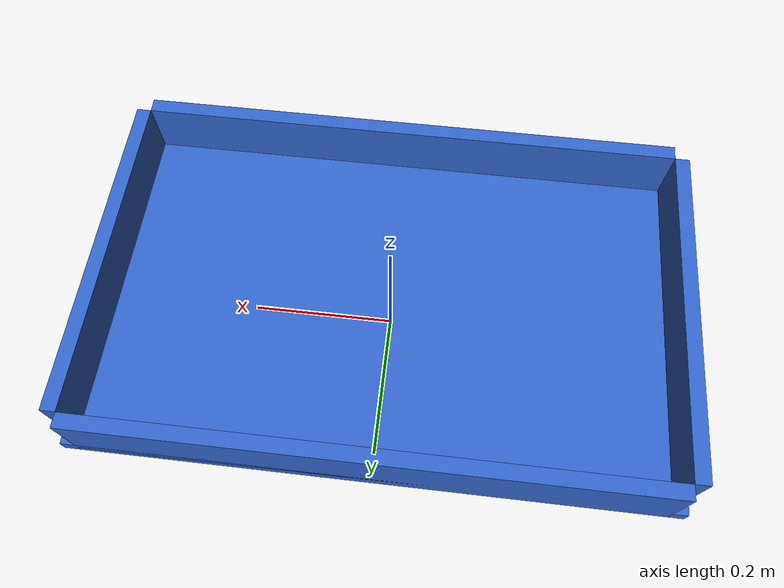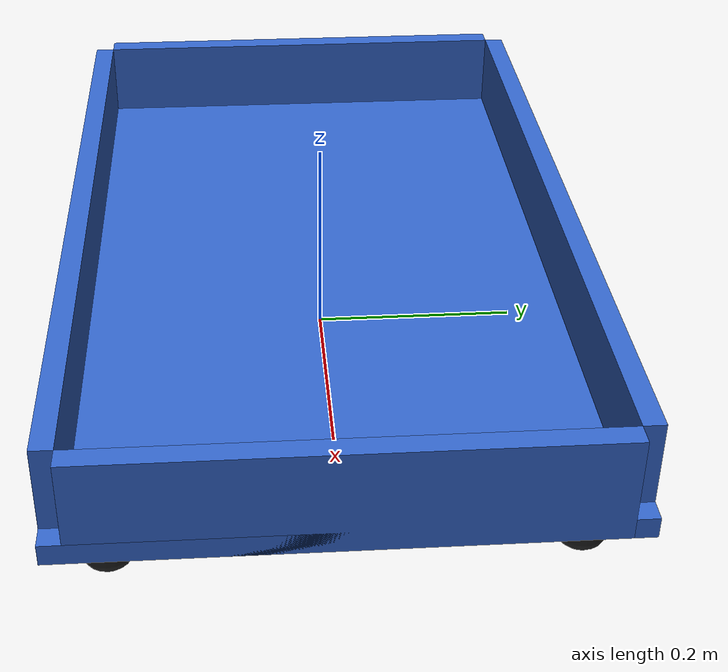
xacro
<?xml version="1.0"?>
<robot name="cart" xmlns:xacro="http://www.ros.org/wiki/xacro">

    <xacro:include filename="$(find lex_simulation)/urdf/lex_base/common/caster_wheel.xacro" />

    <!-- Robot parameters -->
    <xacro:property name="body_length"     value="0.8" />
    <xacro:property name="body_width"      value="0.5" />
    <xacro:property name="body_height"     value="0.1" />
    <xacro:property name="wall_thickness"  value="0.02" />
    <xacro:property name="caster_radius"   value="0.025" />

    <xacro:property name="inner_length"    value="${body_length - 2*wall_thickness}" />
    <xacro:property name="inner_width"     value="${body_width  - 2*wall_thickness}" />
    <xacro:property name="wall_offset_x"   value="${body_length/2 - wall_thickness/2}" />
    <xacro:property name="wall_offset_y"   value="${body_width/2  - wall_thickness/2}" />

    <xacro:property name="caster_inset"    value="0.05" />
    <xacro:property name="caster_x"        value="${body_length/2 - caster_inset}" />
    <xacro:property name="caster_y"        value="${body_width/2 - caster_inset}" />
    <xacro:property name="caster_z"        value="${-body_height/2 + caster_radius}" />

    <!-- Materials -->
    <material name="cart_body_color">
        <color rgba="0.2 0.4 0.8 1.0" />
    </material>
    <material name="cart_wheel_color">
        <color rgba="0.1 0.1 0.1 1.0" />
    </material>

    <link name="base_footprint" />

    <joint name="base_footprint_joint" type="fixed">
        <parent link="base_footprint" />
        <child  link="base_link" />
        <origin xyz="0 0 ${body_height/2}" rpy="0 0 0" />
    </joint>

    <link name="base_link">
        <inertial>
            <mass value="5.0" />
            <origin xyz="0 0 ${body_height/2}" rpy="0 0 0" />
            <inertia ixx="0.1" ixy="0.0" ixz="0.0"
                     iyy="0.15" iyz="0.0"
                     izz="0.2" />
        </inertial>

        <visual>
            <geometry>
                <box size="${body_length} ${body_width} ${wall_thickness}" />
            </geometry>
            <origin xyz="0 0 ${wall_thickness/2}" rpy="0 0 0" />
            <material name="cart_body_color" />
        </visual>
        <collision>
            <geometry>
                <box size="${body_length} ${body_width} ${wall_thickness}" />
            </geometry>
            <origin xyz="0 0 ${wall_thickness/2}" rpy="0 0 0" />
        </collision>

        <visual>
            <geometry>
                <box size="${wall_thickness} ${inner_width} ${body_height}" />
            </geometry>
            <origin xyz="${wall_offset_x} 0 ${body_height/2}" rpy="0 0 0" />
            <material name="cart_body_color" />
        </visual>
        <collision>
            <geometry>
                <box size="${wall_thickness} ${inner_width} ${body_height}" />
            </geometry>
            <origin xyz="${wall_offset_x} 0 ${body_height/2}" rpy="0 0 0" />
        </collision>

        <visual>
            <geometry>
                <box size="${wall_thickness} ${inner_width} ${body_height}" />
            </geometry>
            <origin xyz="${-wall_offset_x} 0 ${body_height/2}" rpy="0 0 0" />
            <material name="cart_body_color" />
        </visual>
        <collision>
            <geometry>
                <box size="${wall_thickness} ${inner_width} ${body_height}" />
            </geometry>
            <origin xyz="${-wall_offset_x} 0 ${body_height/2}" rpy="0 0 0" />
        </collision>

        <visual>
            <geometry>
                <box size="${inner_length} ${wall_thickness} ${body_height}" />
            </geometry>
            <origin xyz="0 ${wall_offset_y} ${body_height/2}" rpy="0 0 0" />
            <material name="cart_body_color" />
        </visual>
        <collision>
            <geometry>
                <box size="${inner_length} ${wall_thickness} ${body_height}" />
            </geometry>
            <origin xyz="0 ${wall_offset_y} ${body_height/2}" rpy="0 0 0" />
        </collision>

        <visual>
            <geometry>
                <box size="${inner_length} ${wall_thickness} ${body_height}" />
            </geometry>
            <origin xyz="0 ${-wall_offset_y} ${body_height/2}" rpy="0 0 0" />
            <material name="cart_body_color" />
        </visual>
        <collision>
            <geometry>
                <box size="${inner_length} ${wall_thickness} ${body_height}" />
            </geometry>
            <origin xyz="0 ${-wall_offset_y} ${body_height/2}" rpy="0 0 0" />
        </collision>
    </link>

    <xacro:caster_wheel prefix="front_left"  parent="base_link"
                        xyz="${ caster_x} ${ caster_y} ${caster_z}" rpy="0 0 0"
                        caster_radius="${caster_radius}" />
    <xacro:caster_wheel prefix="front_right" parent="base_link"
                        xyz="${ caster_x} ${-caster_y} ${caster_z}" rpy="0 0 0"
                        caster_radius="${caster_radius}" />
    <xacro:caster_wheel prefix="rear_left"   parent="base_link"
                        xyz="${-caster_x} ${ caster_y} ${caster_z}" rpy="0 0 0"
                        caster_radius="${caster_radius}" />
    <xacro:caster_wheel prefix="rear_right"  parent="base_link"
                        xyz="${-caster_x} ${-caster_y} ${caster_z}" rpy="0 0 0"
                        caster_radius="${caster_radius}" />

    <gazebo reference="base_link">
        <material>Gazebo/Blue</material>
    </gazebo>

</robot>

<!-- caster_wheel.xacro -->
<robot name="caster_wheel" xmlns:xacro="http://www.ros.org/wiki/xacro">

    <xacro:macro name="caster_wheel" params="prefix parent xyz rpy caster_radius">
        <joint name="${prefix}_caster_joint" type="fixed">
            <parent link="${parent}" />
            <child link="${prefix}_caster" />
            <origin xyz="${xyz}" rpy="${rpy}" />
        </joint>

        <link name="${prefix}_caster">
            <visual>
                <geometry>
                    <sphere radius="${caster_radius}" />
                </geometry>
                <material name="wheel_color">
                    <color rgba="0.1 0.1 0.1 1.0" />
                </material>
            </visual>
            <collision>
                <geometry>
                    <sphere radius="${caster_radius}" />
                </geometry>
            </collision>
            <inertial>
                <mass value="0.01" />
                <origin xyz="0 0 0" rpy="0 0 0" />
                <inertia ixx="0.000001" ixy="0.0" ixz="0.0"
                         iyy="0.000001" iyz="0.0"
                         izz="0.000001" />
            </inertial>
        </link>

        <gazebo reference="${prefix}_caster">
            <mu1>0.0</mu1>
            <mu2>0.0</mu2>
            <kp>1000000.0</kp>
            <kd>100.0</kd>
            <minDepth>0.001</minDepth>
            <maxVel>1.0</maxVel>
            <material>Gazebo/Grey</material>
        </gazebo>
    </xacro:macro>

</robot>
